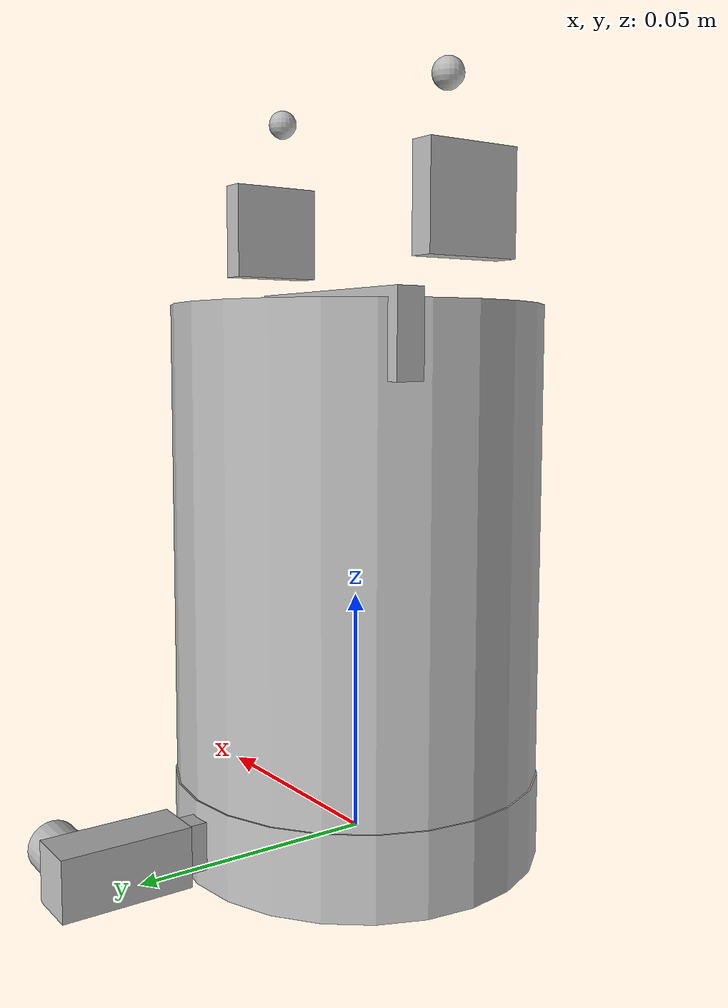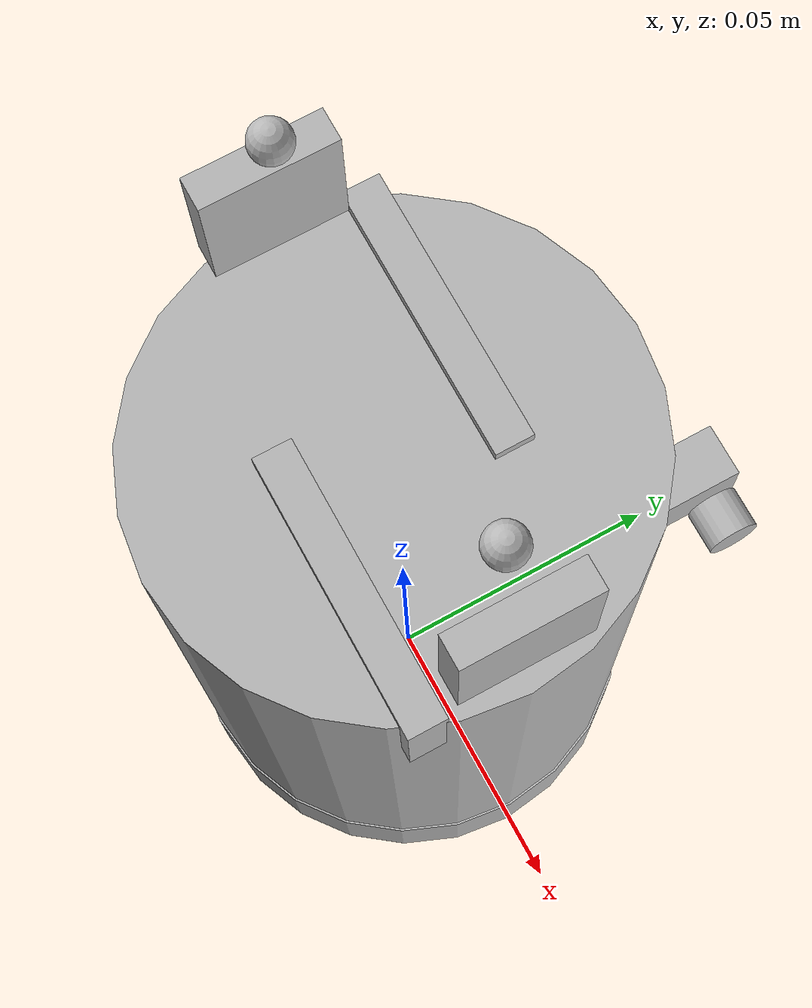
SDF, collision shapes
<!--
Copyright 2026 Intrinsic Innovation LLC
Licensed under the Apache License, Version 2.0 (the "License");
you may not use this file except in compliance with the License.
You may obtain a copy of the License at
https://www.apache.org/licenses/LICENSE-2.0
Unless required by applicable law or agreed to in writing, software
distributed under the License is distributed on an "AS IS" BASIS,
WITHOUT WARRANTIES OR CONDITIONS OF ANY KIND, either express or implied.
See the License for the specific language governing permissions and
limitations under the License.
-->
<?xml version="1.0" ?>

<sdf version="1.9">

  <model name="robotiq_gripper">
    <include merge="true">
      <uri>model://intrinsic_control/intrinsic/models/assets/standard_tooling/robotiq_hande/robotiq_hande</uri>
    </include>
  </model>
</sdf>

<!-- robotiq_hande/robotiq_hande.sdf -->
<sdf version="1.6" xmlns:intrinsic="https://intrinsic.ai/">
  <model name="robotiq_hande">
    <!-- Base of the gripper -->
    <link name="gripper_body">
      <inertial>
        <mass>1</mass>
        <inertia>
          <ixx>0.1</ixx>
          <ixy>0</ixy>
          <ixz>0</ixz>
          <iyy>0.1</iyy>
          <iyz>0</iyz>
          <izz>0.1</izz>
        </inertia>
      </inertial>
      <visual name="visual_io_coupler">
        <pose>0 0 0.0070 0 0 0</pose>
        <geometry>
          <mesh>
            <uri>model://intrinsic_control/intrinsic/models/assets/standard_tooling/robotiq_hande/io_coupler_visual.glb</uri>
          </mesh>
        </geometry>
      </visual>
      <visual name="visual_body">
        <pose>0 0 0.0139 0 0 0</pose>
        <geometry>
          <mesh>
            <uri>model://intrinsic_control/intrinsic/models/assets/standard_tooling/robotiq_hande/base_visual.glb</uri>
          </mesh>
        </geometry>
      </visual>
      <!-- Primitive cylinder/box colliders from CAD exports (Hand-e/model.sdf shifted by +0.0139 m
           in Z, and IO Adapter/model.sdf shifted by +0.0070 m in Z). -->
      <collision name="collision_body">
        <pose>0 0 0.06177 0 0 -1.570796</pose>
        <geometry>
          <cylinder>
            <radius>0.037544</radius>
            <length>0.09574</length>
          </cylinder>
        </geometry>
      </collision>
      <collision name="collision_io_coupler">
        <pose>0 0 0.00545 0 0 0</pose>
        <geometry>
          <cylinder>
            <radius>0.0379</radius>
            <length>0.0169</length>
          </cylinder>
        </geometry>
      </collision>
      <collision name="collision_io_coupler_box1">
        <pose>-0.000733 0.054862 0.005695 0 1.570796 0</pose>
        <geometry>
          <box>
            <size>0.011817 0.025604 0.010486</size>
          </box>
        </geometry>
      </collision>
      <collision name="collision_io_coupler_box2">
        <pose>-0.000739 0.037415 0.00575 0 0 0</pose>
        <geometry>
          <box>
            <size>0.005041 0.011557 0.0095</size>
          </box>
        </geometry>
      </collision>
      <collision name="collision_io_coupler_cyl">
        <pose>0.009816 0.061755 0.005695 0 1.570796 0</pose>
        <geometry>
          <cylinder>
            <radius>0.005</radius>
            <length>0.008147</length>
          </cylinder>
        </geometry>
      </collision>
    </link>

    <!-- Fingers and their prismatic joints -->
    <link name="gripper_finger1">
      <inertial>
        <mass>0.2</mass>
        <!-- Approximately set assuming a box of uniform density of size 0.015 0.04 0.07 -->
        <inertia>
          <ixx>0.0001</ixx>
          <ixy>0</ixy>
          <ixz>0</ixz>
          <iyy>0.00009</iyy>
          <iyz>0</iyz>
          <izz>0.00003</izz>
        </inertia>
      </inertial>
      <visual name="visual_jaw">
        <pose>0 0 0.0139 0 0 0</pose>
        <geometry>
          <mesh>
            <uri>model://intrinsic_control/intrinsic/models/assets/standard_tooling/robotiq_hande/jaw_r_visual.glb</uri>
          </mesh>
        </geometry>
      </visual>
      <visual name="visual_finger">
        <pose>0.026514 -0.01425 0.1115 0 0 0</pose>
        <geometry>
          <mesh>
            <uri>model://intrinsic_control/intrinsic/models/assets/standard_tooling/robotiq_hande/flat_al_finger_visual.glb</uri>
          </mesh>
        </geometry>
      </visual>
      <!-- Simplified fingertip collision geometry carried over from legacy SDF. See b/202207868 -->
      <collision name="collision1">
        <pose>0.028 0 0.15 0 0 0</pose>
        <geometry>
          <sphere>
            <radius>0.003</radius>
          </sphere>
        </geometry>
      </collision>
      <collision name="collision2">
        <pose>0.033 0 0.127 0 0 0</pose>
        <geometry>
          <box>
            <size>0.005 0.02 0.02</size>
          </box>
        </geometry>
      </collision>
      <!-- Rack collider from CAD export (Hand-e/model.sdf) shifted by +0.0139 m in Z. -->
      <collision name="collision_rack">
        <pose>0.013949 -0.01425 0.1033 0 0 -1.570796</pose>
        <geometry>
          <box>
            <size>0.005967 0.043104 0.0164</size>
          </box>
        </geometry>
      </collision>
    </link>
    <link name="gripper_finger2">
      <inertial>
        <mass>0.2</mass>
        <!-- Approximately set assuming a box of uniform density of size 0.015 0.04 0.07 -->
        <inertia>
          <ixx>0.0001</ixx>
          <ixy>0</ixy>
          <ixz>0</ixz>
          <iyy>0.00009</iyy>
          <iyz>0</iyz>
          <izz>0.00003</izz>
        </inertia>
      </inertial>
      <visual name="visual_jaw">
        <pose>0 0 0.0139 0 0 0</pose>
        <geometry>
          <mesh>
            <uri>model://intrinsic_control/intrinsic/models/assets/standard_tooling/robotiq_hande/jaw_l_visual.glb</uri>
          </mesh>
        </geometry>
      </visual>
      <visual name="visual_finger">
        <pose>-0.026514 0.01425 0.1115 0 0 3.141592653589793</pose>
        <geometry>
          <mesh>
            <uri>model://intrinsic_control/intrinsic/models/assets/standard_tooling/robotiq_hande/flat_al_finger_visual.glb</uri>
          </mesh>
        </geometry>
      </visual>
      <!-- Simplified collision geometry. See b/202207868 -->
      <collision name="collision1">
        <pose>-0.028 0 0.15 0 0 0</pose>
        <geometry>
          <sphere>
            <radius>0.003</radius>
          </sphere>
        </geometry>
      </collision>
      <collision name="collision2">
        <pose>-0.033 0 0.127 0 0 0</pose>
        <geometry>
          <box>
            <size>0.005 0.02 0.02</size>
          </box>
        </geometry>
      </collision>
      <collision name="collision_rack">
        <pose>-0.014107 0.01425 0.1033 0 0 -4.712389</pose>
        <geometry>
          <box>
            <size>0.005967 0.04339 0.0164</size>
          </box>
        </geometry>
      </collision>
    </link>

    <joint name="finger1" type="prismatic">
      <parent>gripper_body</parent>
      <child>gripper_finger1</child>
      <pose>0 0 0 0 0 0</pose>
      <axis>
        <xyz>-1 0 0</xyz>
        <limit>
          <lower>0</lower>
          <upper>0.025</upper>
        </limit>
      </axis>
    </joint>
    <joint name="finger2" type="prismatic">
      <parent>gripper_body</parent>
      <child>gripper_finger2</child>
      <pose>0 0 0 0 0 0</pose>
      <axis>
        <xyz>1 0 0</xyz>
        <limit>
          <lower>0</lower>
          <upper>0.025</upper>
        </limit>
      </axis>
    </joint>
    <frame name="tool_frame" attached_to="gripper_body" intrinsic:create_entity="true">
      <pose>0 0 0.128 0 0 0</pose>
    </frame>
  </model>
</sdf>
